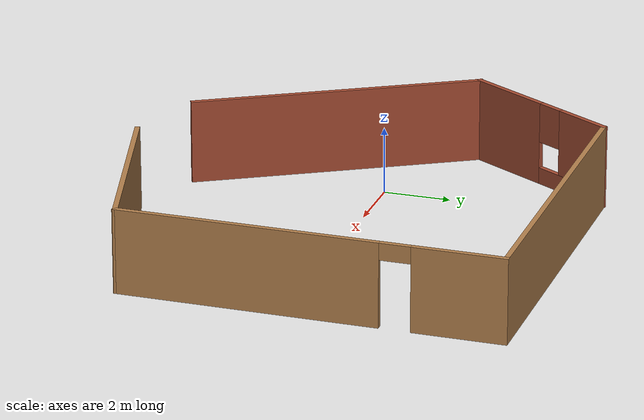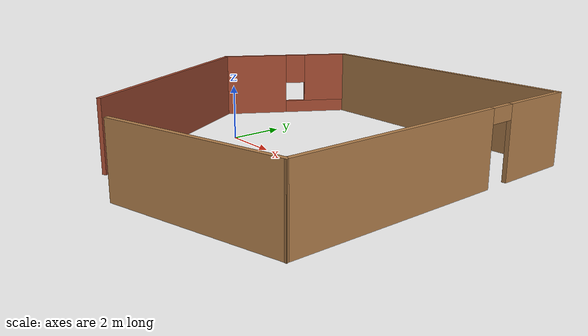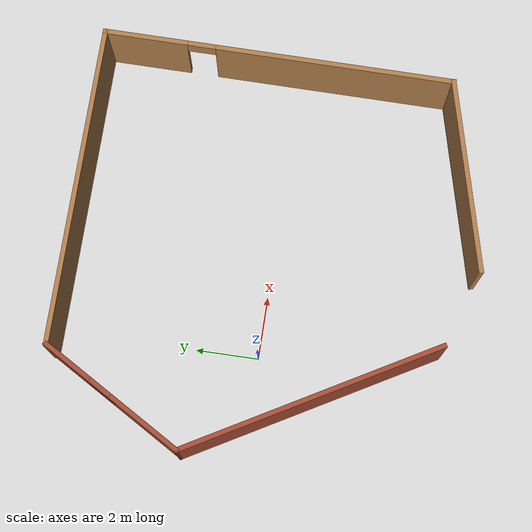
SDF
<?xml version='1.0'?>
<sdf version='1.7'>
  <model name='my_building'>
    <pose>2.91941 -0.020613 0 0 -0 0</pose>
    <link name='Wall_14'>
      <collision name='Wall_14_Collision'>
        <geometry>
          <box>
            <size>8.75 0.15 2.5</size>
          </box>
        </geometry>
        <pose>0 0 1.25 0 -0 0</pose>
      </collision>
      <visual name='Wall_14_Visual'>
        <pose>0 0 1.25 0 -0 0</pose>
        <geometry>
          <box>
            <size>8.75 0.15 2.5</size>
          </box>
        </geometry>
        <material>
          <script>
            <uri>file://media/materials/scripts/gazebo.material</uri>
            <name>Gazebo/Bricks</name>
          </script>
          <ambient>1 1 1 1</ambient>
        </material>
        <meta>
          <layer>0</layer>
        </meta>
      </visual>
      <pose>-4.1697 -1.80654 0 0 -0 2.0944</pose>
    </link>
    <link name='Wall_15'>
      <pose>-5.0447 4.12573 0 0 -0 1.0472</pose>
      <visual name='Wall_15_Visual_0'>
        <pose>-1.30405 0 1.25 0 -0 0</pose>
        <geometry>
          <box>
            <size>2.6419 0.15 2.5</size>
          </box>
        </geometry>
        <material>
          <script>
            <uri>file://media/materials/scripts/gazebo.material</uri>
            <name>Gazebo/Bricks</name>
          </script>
          <ambient>1 1 1 1</ambient>
        </material>
        <meta>
          <layer>0</layer>
        </meta>
      </visual>
      <collision name='Wall_15_Collision_0'>
        <geometry>
          <box>
            <size>2.6419 0.15 2.5</size>
          </box>
        </geometry>
        <pose>-1.30405 0 1.25 0 -0 0</pose>
      </collision>
      <visual name='Wall_15_Visual_1'>
        <pose>1.32095 0 0.25 0 -0 0</pose>
        <geometry>
          <box>
            <size>2.6081 0.15 0.5</size>
          </box>
        </geometry>
        <material>
          <script>
            <uri>file://media/materials/scripts/gazebo.material</uri>
            <name>Gazebo/Bricks</name>
          </script>
          <ambient>1 1 1 1</ambient>
        </material>
        <meta>
          <layer>0</layer>
        </meta>
      </visual>
      <collision name='Wall_15_Collision_1'>
        <geometry>
          <box>
            <size>2.6081 0.15 0.5</size>
          </box>
        </geometry>
        <pose>1.32095 0 0.25 0 -0 0</pose>
      </collision>
      <visual name='Wall_15_Visual_2'>
        <pose>1.72095 0 1.5 0 -0 0</pose>
        <geometry>
          <box>
            <size>1.8081 0.15 2</size>
          </box>
        </geometry>
        <material>
          <script>
            <uri>file://media/materials/scripts/gazebo.material</uri>
            <name>Gazebo/Bricks</name>
          </script>
          <ambient>1 1 1 1</ambient>
        </material>
        <meta>
          <layer>0</layer>
        </meta>
      </visual>
      <collision name='Wall_15_Collision_2'>
        <geometry>
          <box>
            <size>1.8081 0.15 2</size>
          </box>
        </geometry>
        <pose>1.72095 0 1.5 0 -0 0</pose>
      </collision>
      <visual name='Wall_15_Visual_3'>
        <pose>0.416903 0 1.9 0 -0 0</pose>
        <geometry>
          <box>
            <size>0.8 0.15 1.2</size>
          </box>
        </geometry>
        <material>
          <script>
            <uri>file://media/materials/scripts/gazebo.material</uri>
            <name>Gazebo/Bricks</name>
          </script>
          <ambient>1 1 1 1</ambient>
        </material>
        <meta>
          <layer>0</layer>
        </meta>
      </visual>
      <collision name='Wall_15_Collision_3'>
        <geometry>
          <box>
            <size>0.8 0.15 1.2</size>
          </box>
        </geometry>
        <pose>0.416903 0 1.9 0 -0 0</pose>
      </collision>
    </link>
    <link name='Wall_16'>
      <collision name='Wall_16_Collision'>
        <geometry>
          <box>
            <size>10.25 0.15 2.5</size>
          </box>
        </geometry>
        <pose>0 0 1.25 0 -0 0</pose>
      </collision>
      <visual name='Wall_16_Visual'>
        <pose>0 0 1.25 0 -0 0</pose>
        <geometry>
          <box>
            <size>10.25 0.15 2.5</size>
          </box>
        </geometry>
        <material>
          <script>
            <uri>file://media/materials/scripts/gazebo.material</uri>
            <name>Gazebo/Wood</name>
          </script>
          <ambient>1 1 1 1</ambient>
        </material>
        <meta>
          <layer>0</layer>
        </meta>
      </visual>
      <pose>1.2803 6.3341 0 0 -0 0</pose>
    </link>
    <link name='Wall_17'>
      <pose>6.3303 0.7841 0 0 -0 -1.5708</pose>
      <visual name='Wall_17_Visual_0'>
        <pose>-4.26992 0 1.25 0 -0 0</pose>
        <geometry>
          <box>
            <size>2.71015 0.15 2.5</size>
          </box>
        </geometry>
        <material>
          <script>
            <uri>file://media/materials/scripts/gazebo.material</uri>
            <name>Gazebo/Wood</name>
          </script>
          <ambient>1 1 1 1</ambient>
        </material>
        <meta>
          <layer>0</layer>
        </meta>
      </visual>
      <collision name='Wall_17_Collision_0'>
        <geometry>
          <box>
            <size>2.71015 0.15 2.5</size>
          </box>
        </geometry>
        <pose>-4.26992 0 1.25 0 -0 0</pose>
      </collision>
      <visual name='Wall_17_Visual_1'>
        <pose>1.80508 0 1.25 0 -0 0</pose>
        <geometry>
          <box>
            <size>7.63985 0.15 2.5</size>
          </box>
        </geometry>
        <material>
          <script>
            <uri>file://media/materials/scripts/gazebo.material</uri>
            <name>Gazebo/Wood</name>
          </script>
          <ambient>1 1 1 1</ambient>
        </material>
        <meta>
          <layer>0</layer>
        </meta>
      </visual>
      <collision name='Wall_17_Collision_1'>
        <geometry>
          <box>
            <size>7.63985 0.15 2.5</size>
          </box>
        </geometry>
        <pose>1.80508 0 1.25 0 -0 0</pose>
      </collision>
      <visual name='Wall_17_Visual_2'>
        <pose>-2.46485 0 2.25 0 -0 0</pose>
        <geometry>
          <box>
            <size>0.9 0.15 0.5</size>
          </box>
        </geometry>
        <material>
          <script>
            <uri>file://media/materials/scripts/gazebo.material</uri>
            <name>Gazebo/Wood</name>
          </script>
          <ambient>1 1 1 1</ambient>
        </material>
        <meta>
          <layer>0</layer>
        </meta>
      </visual>
      <collision name='Wall_17_Collision_2'>
        <geometry>
          <box>
            <size>0.9 0.15 0.5</size>
          </box>
        </geometry>
        <pose>-2.46485 0 2.25 0 -0 0</pose>
      </collision>
    </link>
    <link name='Wall_18'>
      <collision name='Wall_18_Collision'>
        <geometry>
          <box>
            <size>6.25 0.15 2.5</size>
          </box>
        </geometry>
        <pose>0 0 1.25 0 -0 0</pose>
      </collision>
      <visual name='Wall_18_Visual'>
        <pose>0 0 1.25 0 -0 0</pose>
        <geometry>
          <box>
            <size>6.25 0.15 2.5</size>
          </box>
        </geometry>
        <material>
          <script>
            <uri>file://media/materials/scripts/gazebo.material</uri>
            <name>Gazebo/Wood</name>
          </script>
          <ambient>1 1 1 1</ambient>
        </material>
        <meta>
          <layer>0</layer>
        </meta>
      </visual>
      <pose>3.38422 -5.5553 0 0 -0 -2.87979</pose>
    </link>
    <static>1</static>
  </model>
</sdf>
